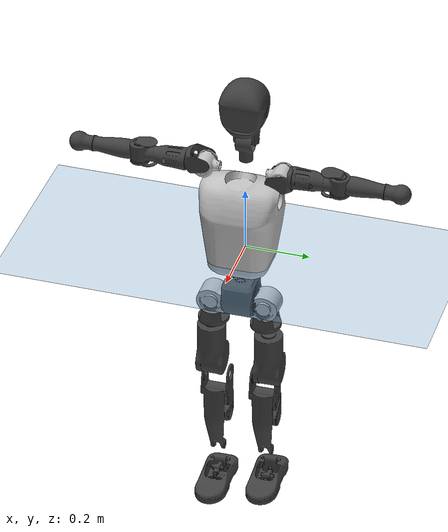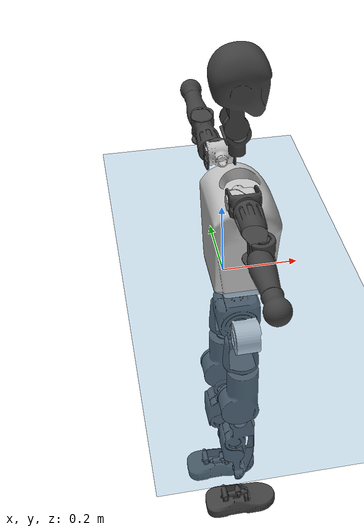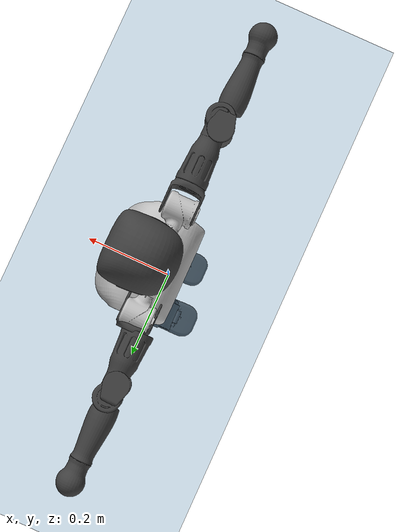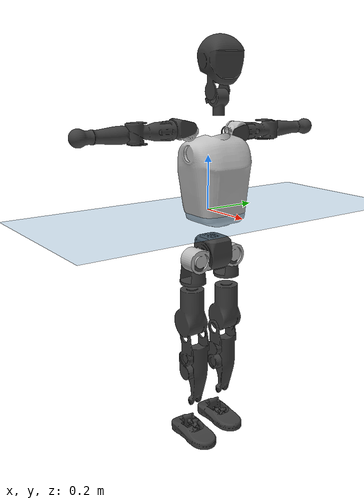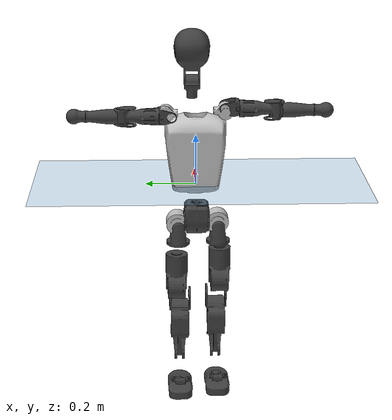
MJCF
<mujoco model="T1">
  <compiler angle="radian" assetdir="assets" balanceinertia="true" inertiafromgeom="false"/>

  <option timestep="0.005" density="1.2" viscosity="2e-05"/>

  <size nkey="1"/>

  <visual>
    <quality shadowsize="8192"/>
    <map shadowclip="0.5"/>
  </visual>

  <default>
    <default class="/">
      <joint armature="0.01" damping="0.01" frictionloss="0.1"/>
      <geom contype="0" conaffinity="0" group="1" solref="-1000 -80"/>
      <site size="0.01 0.005 0.005" group="5"/>
      <general forcelimited="true" biastype="affine" gainprm="25" biasprm="0 -25 -0.6"/>
      <default class="t1">
        <geom rgba="0.25 0.25 0.25 1"/>
        <default class="visual">
          <geom type="mesh" group="2"/>
        </default>
        <default class="collision">
          <geom group="3"/>
        </default>
        <default class="foot">
          <geom size="0.1115 0.05 0.015" type="box" condim="6" group="4" priority="1" solimp="0.015 1 0.015"/>
        </default>
        <default class="reward_collision_sphere">
          <geom group="5" rgba="1 0 0 1"/>
        </default>
      </default>
    </default>
  </default>

  <asset>
    <texture type="skybox" colorspace="auto" name="//unnamed_texture_0" builtin="gradient" rgb1="0.95 0.95 0.95" rgb2="0.95 0.95 0.95" width="100" height="600"/>
    <texture type="2d" colorspace="auto" name="texplane" builtin="checker" rgb1="0.345 0.575 0.748" rgb2="0.345 0.575 0.748" markrgb="1 1 1" width="512" height="512"/>
    <material name="MatPlane" class="/" texture="texplane" texuniform="true" texrepeat="2 2" specular="0.9"/>
    <mesh name="Trunk" class="/" file="Trunk.stl"/>
    <mesh name="H1" class="/" file="H1.stl"/>
    <mesh name="H2" class="/" file="H2.stl"/>
    <mesh name="AL1" class="/" file="AL1.stl"/>
    <mesh name="AL2" class="/" file="AL2.stl"/>
    <mesh name="AL3" class="/" file="AL3.stl"/>
    <mesh name="left_hand_link" class="/" file="left_hand_link.stl"/>
    <mesh name="AR1" class="/" file="AR1.stl"/>
    <mesh name="AR2" class="/" file="AR2.stl"/>
    <mesh name="AR3" class="/" file="AR3.stl"/>
    <mesh name="right_hand_link" class="/" file="right_hand_link.stl"/>
    <mesh name="Waist" class="/" file="Waist.stl"/>
    <mesh name="Hip_Pitch_Left" class="/" file="Hip_Pitch_Left.stl"/>
    <mesh name="Hip_Roll_Left" class="/" file="Hip_Roll_Left.stl"/>
    <mesh name="Hip_Yaw_Left" class="/" file="Hip_Yaw_Left.stl"/>
    <mesh name="Shank_Left" class="/" file="Shank_Left.stl"/>
    <mesh name="Ankle_Cross_Left" class="/" file="Ankle_Cross_Left.stl"/>
    <mesh name="left_foot_link" class="/" file="left_foot_link.stl"/>
    <mesh name="Hip_Pitch_Right" class="/" file="Hip_Pitch_Right.stl"/>
    <mesh name="Hip_Roll_Right" class="/" file="Hip_Roll_Right.stl"/>
    <mesh name="Hip_Yaw_Right" class="/" file="Hip_Yaw_Right.stl"/>
    <mesh name="Shank_Right" class="/" file="Shank_Right.stl"/>
    <mesh name="Ankle_Cross_Right" class="/" file="Ankle_Cross_Right.stl"/>
    <mesh name="right_foot_link" class="/" file="right_foot_link.stl"/>
  </asset>

  <worldbody>
    <geom name="floor" class="/" size="100 100 0.125" type="plane" group="0" material="MatPlane"/>
    <light name="toplight_shadow" class="/" pos="0 0 5" dir="0.0990148 0.0990148 -0.990148" type="directional" ambient="0.04 0.04 0.04" diffuse="0.55 0.55 0.55" specular="0.12 0.12 0.12"/>
    <light name="toplight_fill" class="/" pos="0 0 5" dir="0.0990148 0.0990148 -0.990148" type="directional" castshadow="false" ambient="0.04 0.04 0.04" diffuse="0.3 0.3 0.3" specular="0.08 0.08 0.08"/>
    <body name="trunk" childclass="t1" pos="-0.00988035 0.00082513 0.000115916" quat="0.999998 0.00170808 -1.79993e-05 0.000598942">
      <inertial pos="0.0309882 -0.00316229 0.149394" quat="0.999435 0.0266035 -0.0197022 0.00574707" mass="7.68748" diaginertia="0.00526164 0.022851 0.230351"/>
      <joint name="//unnamed_joint_0" type="free" armature="0" damping="0" frictionloss="0"/>
      <geom name="//unnamed_geom_1" class="visual" rgba="0.76 0.76 0.76 1" mesh="Trunk"/>
      <geom name="//unnamed_geom_2" class="collision" size="0.0678891 0.0905188 0.135778" pos="0.0349512 0 0.161255" type="box"/>
      <geom name="//unnamed_geom_3" class="reward_collision_sphere" size="0.104097" pos="0.0349512 0 0.134379"/>
      <geom name="//unnamed_geom_4" class="reward_collision_sphere" size="0.0135778" pos="0.0349512 0.0670867 0"/>
      <geom name="//unnamed_geom_5" class="reward_collision_sphere" size="0.0135778" pos="0.0349512 -0.0670867 0"/>
      <geom name="//unnamed_geom_6" class="reward_collision_sphere" size="0.0135778" pos="0.0349512 0.0844504 0.241882"/>
      <geom name="//unnamed_geom_7" class="reward_collision_sphere" size="0.0135778" pos="0.0349512 -0.0844504 0.241882"/>
      <site name="imu" pos="0.0706809 0.0354604 -0.0539555" size="0.00905188"/>
      <camera name="track" pos="0 -1.57851 0" quat="0.707107 0.707107 0 0" mode="trackcom"/>
      <camera name="ego_camera" pos="0.0710674 0 0.564391" quat="-0.5 -0.5 0.5 0.5"/>
      <body name="H1" pos="0.0519755 0.0145532 0.342069" quat="0.999997 0.00125287 -0.0017339 -0.00134072">
        <inertial pos="0.00868235 -0.00301006 0.0849064" quat="0.787084 -0.0717113 -0.00859111 0.612603" mass="0.281678" diaginertia="1.60913e-05 8.14647e-05 0.000658078"/>
        <joint name="AAHead_yaw" pos="0 0 0" axis="-0.0688872 0.00127192 0.997624" range="-1.54746 1.45507" armature="0.00376359" damping="0" frictionloss="0.0518181"/>
        <geom name="//unnamed_geom_8" class="visual" mesh="H1"/>
        <body name="H2" pos="-0.006265 0.000142953 0.0836852" quat="0.999983 -0.00162284 -0.00455189 -0.00337222">
          <inertial pos="0.00399954 0.0159874 0.132974" quat="0.98908 0.0884919 -0.0813929 -0.0852404" mass="0.424614" diaginertia="0.000157508 0.000628071 0.00722055"/>
          <joint name="Head_pitch" pos="0 0 0" axis="0.000689933 -0.999996 0.00279307" stiffness="0.0422521" range="-1.323 0.372094" armature="0.00495596" damping="0" frictionloss="0.0954427"/>
          <geom name="//unnamed_geom_9" class="visual" mesh="H2"/>
          <geom name="//unnamed_geom_10" class="collision" size="0.072415" pos="0.00582519 0 0.147817"/>
          <geom name="//unnamed_geom_11" class="reward_collision_sphere" size="0.0814669" pos="0.0116504 0 0.134379"/>
        </body>
      </body>
      <body name="AL1" pos="0.0267442 0.0705045 0.285018" quat="1 0.00023762 0.000886904 0.000113865">
        <inertial pos="0.0143227 0.0212375 0.011327" quat="0.507935 0.494224 -0.519035 0.477857" mass="0.316339" diaginertia="7.25568e-05 0.000315095 0.00115099"/>
        <joint name="Left_Shoulder_Pitch" pos="0 0 0" axis="0.0225076 0.998738 0.0448996" range="-3.45525 1.24737" armature="0.00512818" damping="0.00356728" frictionloss="0.136854"/>
        <geom name="//unnamed_geom_12" class="visual" rgba="0.76 0.76 0.76 1" mesh="AL1"/>
        <body name="AL2" pos="-0.00167279 0.0246027 -0.00999106" quat="0.999995 0.00134723 0.00265157 -0.0013906">
          <inertial pos="0.00194198 0.0345617 -0.00832511" quat="0.487124 0.512777 -0.487656 0.511821" mass="0.112171" diaginertia="1.90497e-05 7.08651e-05 0.000715105"/>
          <joint name="Left_Shoulder_Roll" pos="0 0 0" axis="-0.999415 -0.00218403 -0.0341217" stiffness="0.0200374" range="-1.77183 1.99956" armature="0.0095538" damping="0" frictionloss="0.101383"/>
          <geom name="//unnamed_geom_13" class="visual" mesh="AL2"/>
          <body name="AL3" pos="-0.0140781 0.048882 0.000646686" quat="0.999989 -0.00212405 6.60019e-05 -0.00419423">
            <inertial pos="-0.00133071 0.0628871 -0.0119374" quat="0.70389 0.707908 0.0198098 -0.0548819" mass="0.737662" diaginertia="0.000686962 0.00372207 0.00253867"/>
            <joint name="Left_Elbow_Pitch" pos="0 0 0" axis="0.0113978 -0.999919 -0.0055927" stiffness="0.0301744" range="-2.2298 2.02494" armature="0.0145018" damping="0.0444923" frictionloss="0.0917973"/>
            <geom name="//unnamed_geom_14" class="visual" mesh="AL3"/>
            <geom name="//unnamed_geom_15" class="collision" size="0.0271556 0.0678891" pos="0 0.0394628 0" quat="0.707105 0.707108 0 0" type="cylinder"/>
            <geom name="//unnamed_geom_16" class="reward_collision_sphere" size="0.0325868"/>
            <body name="left_hand_link" pos="-0.00628236 0.116605 0.000743747" quat="0.999984 0.00218679 -0.000461738 -0.00511727">
              <inertial pos="-0.015947 0.0987797 0.00370572" quat="0.72074 0.692743 -0.024197 0.00745967" mass="0.281132" diaginertia="0.000570239 0.00258418 0.00113379"/>
              <joint name="Left_Elbow_Yaw" pos="0 0 0" axis="0.0356469 0.0344507 0.99877" range="-2.60604 0.183887" armature="0.00347388" damping="0" frictionloss="0.0382764"/>
              <geom name="//unnamed_geom_17" class="visual" mesh="left_hand_link"/>
              <geom name="//unnamed_geom_18" class="collision" size="0.0271556 0.0792039" pos="0 0.102603 0" quat="0.707105 0.707108 0 0" type="cylinder"/>
              <geom name="//unnamed_geom_19" class="reward_collision_sphere" size="0.0452594"/>
              <geom name="//unnamed_geom_20" class="reward_collision_sphere" size="0.0316816" pos="0 0.0868181 0"/>
              <geom name="//unnamed_geom_21" class="reward_collision_sphere" size="0.0316816" pos="0 0.16969 0"/>
            </body>
          </body>
        </body>
      </body>
      <body name="AR1" pos="0.0359147 -0.0705796 0.292325" quat="0.999992 0.00186322 -0.00341678 0.000197876">
        <inertial pos="-0.00822778 -0.0412398 0.00120381" quat="0.506304 0.497462 -0.503065 0.493065" mass="0.397612" diaginertia="9.74785e-05 0.000388342 0.0012809"/>
        <joint name="Right_Shoulder_Pitch" pos="0 0 0" axis="0.00345538 -0.999921 -0.012054" range="-1.24448 3.19723" armature="0.00493836" damping="0.0788964" frictionloss="0.130771"/>
        <geom name="//unnamed_geom_22" class="visual" rgba="0.76 0.76 0.76 1" mesh="AR1"/>
        <body name="AR2" pos="0.00187033 -0.0443824 0.0136156" quat="0.999998 -7.84644e-05 0.00137274 -0.00112247">
          <inertial pos="0.0110132 -0.0412899 0.0147336" quat="0.519819 0.485698 -0.508964 0.484604" mass="0.10384" diaginertia="2.36812e-05 0.000109419 0.00061799"/>
          <joint name="Right_Shoulder_Roll" pos="0 0 0" axis="-0.999374 -0.00480066 0.0350533" stiffness="0.0633154" range="-2.04162 1.63184" armature="0.00605426" damping="0" frictionloss="0.0947021"/>
          <geom name="//unnamed_geom_23" class="visual" mesh="AR2"/>
          <body name="AR3" pos="0.000923671 -0.0574311 -0.00573137" quat="1 5.85155e-05 -0.000453326 -0.000161625">
            <inertial pos="0.013773 -0.0736169 0.00173084" quat="0.728998 0.683921 0.00903781 0.0270698" mass="0.764824" diaginertia="0.00091159 0.0039082 0.0022564"/>
            <joint name="Right_Elbow_Pitch" pos="0 0 0" axis="0.0384964 0.99917 0.0133062" stiffness="0.0582541" range="-2.28157 2.46283" armature="0.0088169" damping="0.0242629" frictionloss="0.153678"/>
            <geom name="//unnamed_geom_24" class="visual" mesh="AR3"/>
            <geom name="//unnamed_geom_25" class="collision" size="0.0271556 0.0678891" pos="0 -0.0394628 0" quat="0.707105 0.707108 0 0" type="cylinder"/>
            <geom name="//unnamed_geom_26" class="reward_collision_sphere" size="0.0325868"/>
            <body name="right_hand_link" pos="-0.0096701 -0.124965 -0.00375515" quat="1 0.000190878 -7.37023e-05 9.4208e-05">
              <inertial pos="-0.00179339 -0.0825357 -0.0117397" quat="0.706068 0.708138 0.00243595 -0.00159732" mass="0.251237" diaginertia="0.000536912 0.00300125 0.00106585"/>
              <joint name="Right_Elbow_Yaw" pos="0 0 0" axis="-0.0071338 -0.00211393 0.999972" range="-0.184734 2.5628" armature="0.00975463" damping="0.035802" frictionloss="0.151028"/>
              <geom name="//unnamed_geom_27" class="visual" mesh="right_hand_link"/>
              <geom name="//unnamed_geom_28" class="collision" size="0.0271556 0.0792039" pos="0 -0.102603 0" quat="0.707105 0.707108 0 0" type="cylinder"/>
              <geom name="//unnamed_geom_29" class="reward_collision_sphere" size="0.0452594"/>
              <geom name="//unnamed_geom_30" class="reward_collision_sphere" size="0.0316816" pos="0 -0.0868181 0"/>
              <geom name="//unnamed_geom_31" class="reward_collision_sphere" size="0.0316816" pos="0 -0.16969 0"/>
            </body>
          </body>
        </body>
      </body>
      <body name="Waist" pos="0.0453626 -0.00482104 -0.160168" quat="0.999997 0.000786433 -3.66142e-05 0.00245356">
        <inertial pos="0.00378468 -0.000251573 0.0110363" quat="0.976587 0.00948093 -0.212907 0.0293105" mass="2.18109" diaginertia="0.00029231 0.0015488 0.0168415"/>
        <joint name="Waist" pos="0 0 0" axis="0.0218226 0.0538155 0.998312" range="-1.38771 1.74993" armature="0.00922193" damping="0.00452806" frictionloss="0.150669"/>
        <geom name="//unnamed_geom_32" class="visual" mesh="Waist"/>
        <body name="Hip_Pitch_Left" pos="0.00047088 0.078293 0.00539322" quat="1 -7.31049e-05 -2.59962e-05 -9.16058e-05">
          <inertial pos="0.0041212 0.00591337 -0.0306939" quat="0.970347 0.236209 0.051247 0.00232548" mass="0.780038" diaginertia="0.000137345 0.000388962 0.00463185"/>
          <joint name="Left_Hip_Pitch" pos="0 0 0" axis="-0.0121654 0.999888 -0.00875554" range="-1.68222 1.58311" armature="0.00492788" damping="0" frictionloss="0.086585"/>
          <geom name="//unnamed_geom_33" class="visual" rgba="0.76 0.76 0.76 1" mesh="Hip_Pitch_Left"/>
          <body name="Hip_Roll_Left" pos="-0.0136643 -0.00453735 -0.0300424" quat="0.99998 0.0059369 -0.00215852 -0.000392428">
            <inertial pos="-0.009257 -0.000468327 -0.0729452" quat="0.706519 -0.00248368 -0.0069514 0.707656" mass="0.387551" diaginertia="0.000164868 0.000557423 0.00255904"/>
            <joint name="Left_Hip_Roll" pos="0 0 0" axis="-0.998097 -0.000866571 0.0616556" range="-1.85242 0.236896" armature="0.0133167" damping="0.047337" frictionloss="0.121399"/>
            <geom name="//unnamed_geom_34" class="visual" mesh="Hip_Roll_Left"/>
            <geom name="//unnamed_geom_35" class="reward_collision_sphere" size="0.0497853"/>
            <body name="Hip_Yaw_Left" pos="-0.0087594 0.0055575 -0.118819" quat="0.99998 -0.00324178 0.00342587 0.0043275">
              <inertial pos="0.0102269 0.00461546 -0.114268" quat="0.707518 -0.0155028 -0.033154 0.705746" mass="1.68926" diaginertia="0.001483 0.00801852 0.0116216"/>
              <joint name="Left_Hip_Yaw" pos="0 0 0" axis="0.00371599 0.0258642 -0.999659" stiffness="0.0657904" range="-1.29982 0.748322" armature="0.00890151" damping="0" frictionloss="0.0364108"/>
              <geom name="//unnamed_geom_36" class="visual" mesh="Hip_Yaw_Left"/>
              <geom name="//unnamed_geom_37" class="collision" size="0.0452594 0.072415" type="cylinder"/>
              <body name="Shank_Left" pos="-0.0121681 -0.0137596 -0.173814" quat="1 -7.26545e-05 9.93941e-05 0.000162028">
                <inertial pos="0.011426 -0.00511485 -0.172725" quat="0.994386 0.0414654 0.0333686 0.0914531" mass="1.4216" diaginertia="0.00230066 0.00844191 0.00706956"/>
                <joint name="Left_Knee_Pitch" pos="0 0 0" axis="0.0286917 0.998273 -0.0512671" stiffness="0.0125268" range="0.00279255 2.11613" armature="0.0138619" damping="0" frictionloss="0.0261289"/>
                <geom name="//unnamed_geom_38" class="visual" mesh="Shank_Left"/>
                <geom name="//unnamed_geom_39" class="collision" size="0.0452594 0.0678891" pos="0 0 -0.161255" type="cylinder"/>
                <geom name="//unnamed_geom_40" class="reward_collision_sphere" size="0.0588372"/>
                <body name="Ankle_Cross_Left" pos="-0.00179922 0.0022892 -0.38361" quat="0.999999 -0.000209829 -0.000329567 -0.00118653">
                  <inertial pos="-0.00158559 -0.00423387 -0.00858999" quat="0.442384 0.555275 0.542405 0.44918" mass="0.0479447" diaginertia="1.57168e-06 7.10611e-06 4.21907e-05"/>
                  <joint name="Left_Ankle_Pitch" pos="0 0 0" axis="0.0322233 0.998532 0.0435435" stiffness="0.0316381" range="-0.865488 0.551285" armature="0.00246477" damping="0.0271362" frictionloss="0.124389"/>
                  <geom name="//unnamed_geom_41" class="visual" mesh="Ankle_Cross_Left"/>
                  <body name="left_foot_link" pos="-0.0151485 -0.00437615 -0.00892632" quat="1 -0.000303788 -7.38248e-05 -0.000516409">
                    <inertial pos="0.0139399 -0.00988201 -0.0125674" quat="0.00450561 0.611104 -0.00661897 0.79151" mass="0.516978" diaginertia="0.000177385 0.000668785 0.0107585"/>
                    <joint name="Left_Ankle_Roll" pos="0 0 0" axis="-0.999999 0.00147681 2.56704e-05" range="-0.62131 0.599149" armature="0.00915752" damping="0.082786" frictionloss="0.104096"/>
                    <geom name="//unnamed_geom_42" class="visual" mesh="left_foot_link"/>
                    <geom name="left_foot" class="foot" size="0.133403 0.0668274 0.0180133" pos="0.00582519 0 -0.0201568"/>
                    <geom name="//unnamed_geom_44" class="reward_collision_sphere" size="0.0470698" pos="0.00582519 0 -0.0201568"/>
                    <geom name="//unnamed_geom_45" class="reward_collision_sphere" size="0.0271556" pos="0.0553393 -0.0181529 -0.0201568"/>
                    <geom name="//unnamed_geom_46" class="reward_collision_sphere" size="0.0271556" pos="-0.0407764 -0.0181529 -0.0201568"/>
                    <site name="left_foot" class="foot" pos="0.00582519 0 -0.0201568" size="0.00905188"/>
                  </body>
                </body>
              </body>
            </body>
          </body>
        </body>
        <body name="Hip_Pitch_Right" pos="0.00952145 -0.0857729 0.00990109" quat="0.999998 -0.00100604 -0.00148131 0.00027861">
          <inertial pos="0.00348401 0.00473226 -0.0117286" quat="0.976073 -0.217189 -0.00580811 0.00875998" mass="0.736481" diaginertia="0.000143641 0.000373274 0.00497015"/>
          <joint name="Right_Hip_Pitch" pos="0 0 0" axis="0.0344193 -0.999341 0.0115689" stiffness="0.0351183" range="-1.25164 1.50943" armature="0.0091006" damping="0" frictionloss="0.153416"/>
          <geom name="//unnamed_geom_47" class="visual" rgba="0.76 0.76 0.76 1" mesh="Hip_Pitch_Right"/>
          <body name="Hip_Roll_Right" pos="-0.0140038 -0.00198205 -0.0326216" quat="0.999999 0.000266168 0.000746261 0.000650148">
            <inertial pos="0.00617109 0.0113252 -0.083776" quat="0.720526 -0.0211497 0.0054901 0.693084" mass="0.325673" diaginertia="0.00013242 0.000578133 0.00214963"/>
            <joint name="Right_Hip_Roll" pos="0 0 0" axis="-0.997584 0.00428171 -0.069332" stiffness="0.0139624" range="-0.188423 1.65686" armature="0.0138444" damping="0.00513349" frictionloss="0.0729554"/>
            <geom name="//unnamed_geom_48" class="visual" mesh="Hip_Roll_Right"/>
            <geom name="//unnamed_geom_49" class="reward_collision_sphere" size="0.0497853"/>
            <body name="Hip_Yaw_Right" pos="0.00150256 -0.00712896 -0.0982339" quat="0.999997 0.00150619 0.00159643 -0.00105097">
              <inertial pos="-0.0123795 -0.0135051 -0.110697" quat="0.695459 0.00242831 0.0306322 0.717908" mass="1.58976" diaginertia="0.00167741 0.00855378 0.0128049"/>
              <joint name="Right_Hip_Yaw" pos="0 0 0" axis="0.00480978 0.000442455 -0.999988" range="-0.894087 0.902788" armature="0.0102362" damping="0.0241131" frictionloss="0.0876257"/>
              <geom name="//unnamed_geom_50" class="visual" mesh="Hip_Yaw_Right"/>
              <geom name="//unnamed_geom_51" class="collision" size="0.0452594 0.072415" type="cylinder"/>
              <body name="Shank_Right" pos="-0.0120942 0.0138524 -0.191728" quat="1 0.000656567 -0.000154856 -0.000241936">
                <inertial pos="0.011176 -0.015876 -0.157158" quat="0.998744 0.0283795 -0.0368082 0.0187077" mass="1.08147" diaginertia="0.002604 0.0116313 0.00905733"/>
                <joint name="Right_Knee_Pitch" pos="0 0 0" axis="0.0160172 -0.999868 -0.00255583" range="-2.17222 -0.0271016" armature="0.00872048" damping="0" frictionloss="0.124463"/>
                <geom name="//unnamed_geom_52" class="visual" mesh="Shank_Right"/>
                <geom name="//unnamed_geom_53" class="collision" size="0.0452594 0.0678891" pos="0 0 -0.161255" type="cylinder"/>
                <geom name="//unnamed_geom_54" class="reward_collision_sphere" size="0.0588372"/>
                <body name="Ankle_Cross_Right" pos="0.00112262 -0.00458803 -0.371801" quat="1 -4.90354e-07 0.000689169 0.000154131">
                  <inertial pos="0.00299159 0.0123544 -0.0159572" quat="0.442984 0.584127 0.493094 0.468422" mass="0.0515473" diaginertia="1.86785e-06 1.08559e-05 5.82951e-05"/>
                  <joint name="Right_Ankle_Pitch" pos="0 0 0" axis="-0.0154529 -0.998534 -0.0518711" range="-0.510035 0.859967" armature="0.0039217" damping="0.074478" frictionloss="0.0928951"/>
                  <geom name="//unnamed_geom_55" class="visual" mesh="Ankle_Cross_Right"/>
                  <body name="right_foot_link" pos="-0.00224313 -0.00372206 -0.0293287" quat="1 -3.62666e-05 -6.25113e-05 5.83992e-06">
                    <inertial pos="0.00450187 -0.00653183 -0.0252589" quat="0.0454793 0.615659 -0.00469186 0.786685" mass="0.538944" diaginertia="0.000153838 0.000682961 0.00978397"/>
                    <joint name="Right_Ankle_Roll" pos="0 0 0" axis="-0.999997 0.000184356 -0.00247331" range="-0.426788 0.630654" armature="0.0112568" damping="0.0156108" frictionloss="0.135618"/>
                    <geom name="//unnamed_geom_56" class="visual" mesh="right_foot_link"/>
                    <geom name="right_foot" class="foot" size="0.0921998 0.042837 0.0103705" pos="0.00582519 0 -0.0201568"/>
                    <geom name="//unnamed_geom_58" class="reward_collision_sphere" size="0.0362075"/>
                    <geom name="//unnamed_geom_59" class="reward_collision_sphere" size="0.0271556" pos="0.00582519 0 -0.0201568"/>
                    <geom name="//unnamed_geom_60" class="reward_collision_sphere" size="0.0271556" pos="0.0553393 0.0181529 -0.0201568"/>
                    <geom name="//unnamed_geom_61" class="reward_collision_sphere" size="0.0271556" pos="-0.0407764 0.0181529 -0.0201568"/>
                    <site name="right_foot" class="foot" pos="0.00582519 0 -0.0201568" size="0.00905188"/>
                  </body>
                </body>
              </body>
            </body>
          </body>
        </body>
      </body>
    </body>
  </worldbody>

  <contact>
    <pair class="/" geom1="floor" geom2="left_foot" name="//unnamed_contact_0"/>
    <pair class="/" geom1="floor" geom2="right_foot" name="//unnamed_contact_1"/>
  </contact>

  <actuator>
    <general name="AAHead_yaw" class="/" joint="AAHead_yaw" forcerange="-3.88855 3.88855" gainprm="18.9522" biasprm="0 -18.9522 -0.703802"/>
    <general name="Head_pitch" class="/" joint="Head_pitch" forcerange="-5.41027 5.41027" gainprm="18.9522" biasprm="0 -18.9522 -0.703802"/>
    <general name="Left_Shoulder_Pitch" class="/" joint="Left_Shoulder_Pitch" forcerange="-15.3824 15.3824" gainprm="18.9522" biasprm="0 -18.9522 -0.703802"/>
    <general name="Left_Shoulder_Roll" class="/" joint="Left_Shoulder_Roll" forcerange="-16.851 16.851" gainprm="18.9522" biasprm="0 -18.9522 -0.703802"/>
    <general name="Left_Elbow_Pitch" class="/" joint="Left_Elbow_Pitch" forcerange="-9.68379 9.68379" gainprm="18.9522" biasprm="0 -18.9522 -0.703802"/>
    <general name="Left_Elbow_Yaw" class="/" joint="Left_Elbow_Yaw" forcerange="-11.0205 11.0205" gainprm="18.9522" biasprm="0 -18.9522 -0.703802"/>
    <general name="Right_Shoulder_Pitch" class="/" joint="Right_Shoulder_Pitch" forcerange="-20.7498 20.7498" gainprm="18.9522" biasprm="0 -18.9522 -0.703802"/>
    <general name="Right_Shoulder_Roll" class="/" joint="Right_Shoulder_Roll" forcerange="-19.1553 19.1553" gainprm="18.9522" biasprm="0 -18.9522 -0.703802"/>
    <general name="Right_Elbow_Pitch" class="/" joint="Right_Elbow_Pitch" forcerange="-17.0914 17.0914" gainprm="18.9522" biasprm="0 -18.9522 -0.703802"/>
    <general name="Right_Elbow_Yaw" class="/" joint="Right_Elbow_Yaw" forcerange="-13.3783 13.3783" gainprm="18.9522" biasprm="0 -18.9522 -0.703802"/>
    <general name="Waist" class="/" joint="Waist" forcerange="-31.0003 31.0003" gainprm="18.9522" biasprm="0 -18.9522 -0.703802"/>
    <general name="Left_Hip_Pitch" class="/" joint="Left_Hip_Pitch" forcerange="-41.6164 41.6164" gainprm="18.9522" biasprm="0 -18.9522 -0.703802"/>
    <general name="Left_Hip_Roll" class="/" joint="Left_Hip_Roll" forcerange="-23.4877 23.4877" gainprm="18.9522" biasprm="0 -18.9522 -0.703802"/>
    <general name="Left_Hip_Yaw" class="/" joint="Left_Hip_Yaw" forcerange="-38.3669 38.3669" gainprm="18.9522" biasprm="0 -18.9522 -0.703802"/>
    <general name="Left_Knee_Pitch" class="/" joint="Left_Knee_Pitch" forcerange="-38.0997 38.0997" gainprm="18.9522" biasprm="0 -18.9522 -0.703802"/>
    <general name="Left_Ankle_Pitch" class="/" joint="Left_Ankle_Pitch" forcerange="-23.6716 23.6716" gainprm="18.9522" biasprm="0 -18.9522 -0.703802"/>
    <general name="Left_Ankle_Roll" class="/" joint="Left_Ankle_Roll" forcerange="-14.0128 14.0128" gainprm="18.9522" biasprm="0 -18.9522 -0.703802"/>
    <general name="Right_Hip_Pitch" class="/" joint="Right_Hip_Pitch" forcerange="-43.7082 43.7082" gainprm="18.9522" biasprm="0 -18.9522 -0.703802"/>
    <general name="Right_Hip_Roll" class="/" joint="Right_Hip_Roll" forcerange="-30.5695 30.5695" gainprm="18.9522" biasprm="0 -18.9522 -0.703802"/>
    <general name="Right_Hip_Yaw" class="/" joint="Right_Hip_Yaw" forcerange="-33.2372 33.2372" gainprm="18.9522" biasprm="0 -18.9522 -0.703802"/>
    <general name="Right_Knee_Pitch" class="/" joint="Right_Knee_Pitch" forcerange="-77.2435 77.2435" gainprm="18.9522" biasprm="0 -18.9522 -0.703802"/>
    <general name="Right_Ankle_Pitch" class="/" joint="Right_Ankle_Pitch" forcerange="-26.8222 26.8222" gainprm="18.9522" biasprm="0 -18.9522 -0.703802"/>
    <general name="Right_Ankle_Roll" class="/" joint="Right_Ankle_Roll" forcerange="-10.614 10.614" gainprm="18.9522" biasprm="0 -18.9522 -0.703802"/>
  </actuator>

  <sensor>
    <gyro site="imu" name="imu_angular_velocity"/>
    <velocimeter site="imu" name="imu_linear_velocity"/>
    <framelinvel objtype="site" objname="left_foot" name="left_foot_global_linear_velocity"/>
    <framelinvel objtype="site" objname="right_foot" name="right_foot_global_linear_velocity"/>
  </sensor>

  <keyframe>
    <key name="home" qpos="0 0 0.6385 1 0 0 0 0 0 0 1.4 0 -0.4 0 -1.4 0 0.4 0 -0.4 0 0 0.8 -0.4 0 0.4 0 0 -0.8 0.4 0"/>
  </keyframe>
</mujoco>
